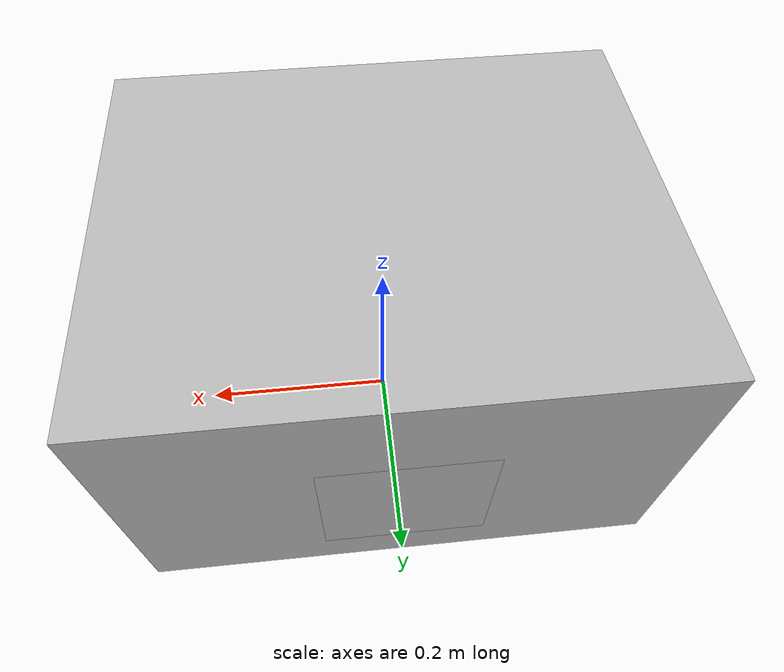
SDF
<?xml version="1.0" ?>
<sdf version="1.6">
  <model name="aruco_id1_box">
    <pose>0 0 0.15 0 0 0</pose>

    <link name="box_link">
      <inertial>
        <mass>2</mass>
        <inertia>
          <ixx>0.041666667</ixx>
          <ixy>0</ixy>
          <ixz>0</ixz>
          <iyy>0.056666667</iyy>
          <iyz>0</iyz>
          <izz>0.068333333</izz>
        </inertia>
      </inertial>

      <!-- Box collision -->
      <collision name="box_collision">
        <geometry>
          <box>
            <size>0.5 0.4 0.3</size>
          </box>
        </geometry>
        <surface>
          <friction>
            <ode>
              <mu>1.0</mu>
              <mu2>1.0</mu2>
            </ode>
          </friction>
          <contact>
            <ode>
              <kp>10000000.0</kp>
              <kd>1.0</kd>
              <min_depth>0.001</min_depth>
              <max_vel>0.1</max_vel>
            </ode>
          </contact>
        </surface>
      </collision>

      <!-- Box visual-->
      <visual name="box_visual">
        <pose>0 0 -0.15 0 0 0</pose>
        <geometry>
          <mesh>
            <uri>model://meshes/cardboard_box.dae</uri>
            <scale>1.25931896 1.007455168 0.755591376</scale>
          </mesh>
        </geometry>
      </visual>

      <!-- ArUco marker front -->
      <visual name="vf">
        <pose>0.26 0 0 1.5708 -1.5708 1.5708</pose>
        <geometry>
          <mesh><uri>model://meshes/aruco_marker_1.dae</uri></mesh>
        </geometry>
      </visual>

      <!-- ArUco marker back -->
      <visual name="vb">
        <pose>-0.26 0 0 -1.5708 -1.5708 1.5708</pose>
        <geometry>
          <mesh><uri>model://meshes/aruco_marker_1.dae</uri></mesh>
        </geometry>
      </visual>

      <!-- ArUco marker left -->
      <visual name="vl">
        <pose>0 0.21 0 1.5708 -1.5708 3.1416</pose>
        <geometry>
          <mesh><uri>model://meshes/aruco_marker_1.dae</uri></mesh>
        </geometry>
      </visual>

      <!-- ArUco marker right -->
      <visual name="vr">
        <pose>0 -0.21 0 1.5708 -1.5708 0</pose>
        <geometry>
          <mesh><uri>model://meshes/aruco_marker_1.dae</uri></mesh>
        </geometry>
      </visual>

    </link>
  </model>
</sdf>
